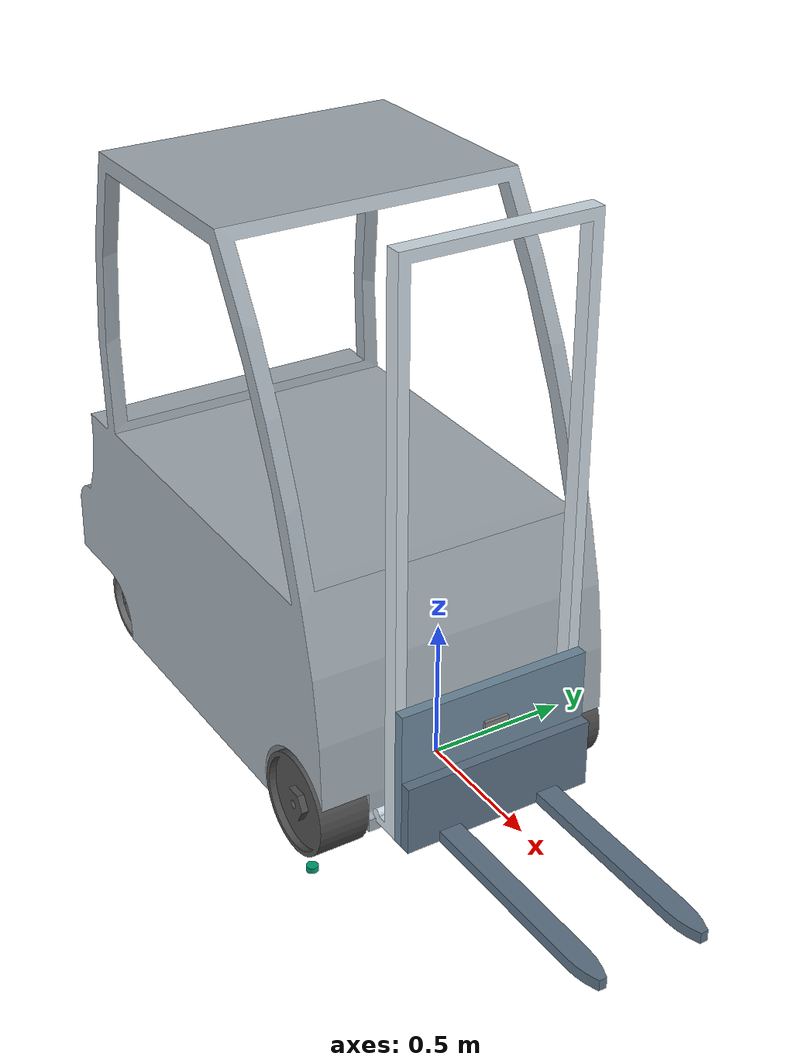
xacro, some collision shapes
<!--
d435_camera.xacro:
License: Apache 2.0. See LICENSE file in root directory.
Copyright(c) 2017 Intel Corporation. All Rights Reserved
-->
<?xml version="1.0" ?>
<robot name="RX20_16" xmlns:xacro="http://www.ros.org/wiki/xacro" >

<xacro:include filename="$(find forklift_simulator)/urdf/RX20_16/inertia.xacro" />
<xacro:include filename="$(find forklift_simulator)/urdf/RX20_16/base.xacro" />
<xacro:include filename="$(find forklift_simulator)/urdf/RX20_16/nav_lidar.xacro" />
<xacro:include filename="$(find forklift_simulator)/urdf/RX20_16/detection_lidar.xacro" />
<xacro:include filename="$(find forklift_simulator)/urdf/RX20_16/steer_wheels.xacro" />
<xacro:include filename="$(find forklift_simulator)/urdf/RX20_16/front_wheels.xacro" />
<xacro:include filename="$(find forklift_simulator)/urdf/RX20_16/d435_camera.xacro" />
<xacro:include filename="$(find forklift_simulator)/urdf/RX20_16/loading_forklift_joints.xacro" />
<xacro:include filename="$(find forklift_simulator)/urdf/RX20_16/lib_ackermansteer.xacro" />

<xacro:camera_d435 name="camera" topics_ns="camera" parent="lift_link" publish_pointcloud="true"> <origin xyz="0.02 0 0.1" rpy="0 0 0" /> </xacro:camera_d435>

<xacro:rx20_steer_wheel name="left" x_steering="-1.429" y_steering="0.404" z_steering="0.06" radius="0.150" width="0.15" flip="-1" />
<xacro:rx20_steer_wheel name="right" x_steering="-1.429" y_steering="-0.404" z_steering="0.06" radius="0.150" width="0.15" flip="-1" />

<xacro:rx20_front_wheel name="right" x_loading="0.0" y_loading="0.466" z_loading="0.0" radius="0.18" width="0.18" flip="-1" />
<xacro:rx20_front_wheel name="left" x_loading="0.0" y_loading="-0.466" z_loading="0.0" radius="0.18" width="0.18" flip="-1" />

<xacro:nav_lidar name="back"  x="0.2"  y="-0.6" z="-0.1" roll="0" pitch="0" yaw="1.57" resolution="1"/>

</robot>

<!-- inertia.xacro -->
<robot xmlns:xacro="http://www.ros.org/wiki/xacro">

    <xacro:macro  name="cylinder_inertia" params="mass r l">
      <inertia  ixx="${mass*(3*r*r+l*l)/12}" ixy = "0" ixz = "0"
                iyy="${mass*(3*r*r+l*l)/12}" iyz = "0"
                izz="${mass*(r*r)/2}" />
    </xacro:macro >

    <xacro:macro name="box_inertia" params="mass x y z">
      <inertia  ixx="${mass*(y*y+z*z)/12}" ixy = "0" ixz = "0"
                iyy="${mass*(x*x+z*z)/12}" iyz = "0"
                izz="${mass*(x*x+y*y)/12}"/>
    </xacro:macro>

    <xacro:macro name="sphere_inertia" params="mass r">
      <inertia
          ixx="${2*mass*r*r/5}" ixy = "0" ixz = "0"
          iyy="${2*mass*r*r/5}" iyz = "0"
          izz="${2*mass*r*r/5}"/>
    </xacro:macro>

</robot>

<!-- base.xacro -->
<robot name="RX20_16" xmlns:xacro="http://www.ros.org/wiki/xacro">

  <link name="base_footprint"/>
  <link name="base_scan"/>

  <link name="base_link">
   <inertial>
    <origin xyz="-0.8 0 0.417" rpy="0 0 0"/>
     <xacro:box_inertia mass="10" x="1.843" y="1.1" z="0.835"/>
    <mass value= "10"/>
    </inertial>

    <collision>
      <origin rpy="0 0 0" xyz="0 0 0"/>
      <geometry>
        <mesh
          filename="$(find forklift_simulator)/urdf/RX20_16/meshes/body.dae" />
      </geometry>
    </collision>
    <visual>
      <origin rpy="0 0 0" xyz="0 0 0"/>
      <geometry>
        <mesh
        filename="$(find forklift_simulator)/urdf/RX20_16/meshes/body.dae" />
      </geometry>
    </visual>
  </link>

  <joint name="imu_joint" type="fixed">
    <parent link="base_link"/>
    <child link="imu_link"/>
    <origin xyz="0.0 0 0.068" rpy="0 0 0"/>
  </joint>

  <link name="imu_link"/>

  <joint name="base_joint" type="fixed">
    <parent link="base_footprint" />
    <child link="base_link" />
    <origin xyz="0.0 0 0.0" rpy="0 0 0" />
    <axis xyz="0 0 1" />
  </joint>

  <joint name="scan_joint" type="fixed">
    <parent link="base_footprint" />
    <child link="base_scan" />
    <origin xyz="0.0 0 0.0" rpy="0 0 0" />
    <axis xyz="0 0 1" />
  </joint>

</robot>

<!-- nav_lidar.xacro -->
<robot name="RX20_16" xmlns:xacro="http://www.ros.org/wiki/xacro">

<xacro:macro name="nav_lidar" params="name x y z roll pitch yaw resolution">

  <link name="${name}_nav_lidar">
      <inertial>
      <origin xyz="0 0 0" rpy="0 0 0"/>
      <xacro:cylinder_inertia mass="0.01" r="0.02" l="0.02" />
      <mass value= "0.01"/>
      </inertial>

      <collision>
      <origin xyz="0 0 0" rpy="0 0 0"/>
      <geometry>
            <cylinder radius="0.02" length="0.02"/>
      </geometry>
      </collision>

      <visual>
      <origin xyz="0 0 0" rpy="0 0 0"/>
      <geometry>
      <cylinder radius="0.02" length="0.02"/>
      </geometry>
      </visual>
  </link>

  <gazebo reference="${name}_nav_lidar"  >
      <sensor name="/scan_${name}_nav_lidar_sensor" type="ray">
        <pose>0 0 0 0 0   0</pose>
        <visualize>false</visualize>
        <update_rate>20</update_rate>
          <ray>
          <scan>
            <horizontal>
              <samples>1440</samples>
                <resolution>1</resolution>
              <min_angle>0</min_angle>
                <max_angle>6.28</max_angle>
            </horizontal>
          </scan>
            <range>
            <min>0.10</min>
            <max>10.0</max>
              <resolution>0.01</resolution>
          </range>
          <noise>
              <type>gaussian</type>
            <mean>0.0</mean>
            <stddev>0.001</stddev>
            </noise>
        </ray>
        <plugin filename="libgazebo_ros_laser.so"   name="gazebo_ros_head_hokuyo_controller">
          <topicName>/scan</topicName>
            <frameName>${name}_nav_lidar</frameName>
        </plugin>
      </sensor>
    </gazebo>

  <joint name="lidar_joint_${name}" type="fixed">

    <parent link="base_scan" />
    <child link="${name}_nav_lidar" />
    <origin xyz="${x} ${y} ${z}" rpy="${roll} ${pitch} ${yaw}" />
    <axis xyz="0 0 1" />
  </joint>

 </xacro:macro>

</robot>

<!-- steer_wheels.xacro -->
<robot name="RX20_16" xmlns:xacro="http://www.ros.org/wiki/xacro">

<xacro:macro name="rx20_steer_wheel" params="name x_steering y_steering z_steering radius width flip">

  <link name="wheel_${name}_steering_link">
    <inertial>
    <origin xyz="0 0 0.1125" rpy="0 0 0"/>
    <xacro:cylinder_inertia mass="1" r="0.05" l="0.225" />
    <mass value= "1"/>
    </inertial>

    <collision >
    <origin xyz="0 0 0" rpy="0 0 0"/>
    <geometry>
        <mesh filename="$(find forklift_simulator)/urdf/RX20_16/meshes/steering_rod.dae" />
    </geometry>
    </collision>

    <visual >
    <origin xyz="0 0 0" rpy="0 0 0"/>
    <geometry>
        <mesh filename="$(find forklift_simulator)/urdf/RX20_16/meshes/steering_rod.dae" />
    </geometry>
    </visual>
  </link>

  <joint name="wheel_${name}_steering_joint" type="revolute">
    <parent link="base_link" />
    <child link="wheel_${name}_steering_link" />
    <origin xyz="${x_steering} ${y_steering} ${z_steering }" rpy="0 0 1.57" />
    <axis xyz="0 0 ${1*flip}" />
    <limit lower="-1.0" upper="1.0" effort="30" velocity="0.3"/>
     <dynamics damping="1" friction="1"/>
  </joint>

  <link name="wheel_${name}_link">
    <inertial>
    <origin xyz="0 0 0" rpy="0 0 0"/>
    <xacro:cylinder_inertia mass="0.5" r="${radius}" l="${width}" />
    <mass value= "0.5"/>
    </inertial>

    <collision >
      <origin xyz="0 0 0" rpy="0 0 0"/>
      <geometry>
           <cylinder radius="${radius}" length="${width}"/>
      </geometry>
    </collision>

    <visual>
    <origin xyz="0 0 0" rpy="0 0 0"/>
    <geometry>
        <mesh filename="$(find forklift_simulator)/urdf/RX20_16/meshes/rear_wheel.dae" />
    </geometry>
    </visual>
  </link>

  <joint name="wheel_${name}_joint" type="continuous">
    <parent link="wheel_${name}_steering_link" />
    <child link="wheel_${name}_link" />
    <origin xyz=" 0 0 -0.09" rpy="0 1.57 0" />
    <axis xyz="0 0 1" />
        <limit effort="100" velocity="100"/>
     <dynamics damping="0.01" friction="0.0"/>
  </joint>

  <transmission name="trans_steering_${name}">
    <type>transmission_interface/SimpleTransmission</type>
    <joint name="wheel_${name}_steering_joint">
      <hardwareInterface>hardware_interface/EffortJointInterface</hardwareInterface>
    </joint>
    <actuator name="motor_steering_wheel_${name}">
      <hardwareInterface>hardware_interface/EffortJointInterface</hardwareInterface>
      <mechanicalReduction>1</mechanicalReduction>
    </actuator>
  </transmission>

  <gazebo reference="wheel_${name}_link">
			<mu1>1</mu1>
			<mu2>1</mu2>
			<kp>1000000000.0</kp>
			<kd>1000.0</kd>
			<minDepth>0.002</minDepth>
			<maxVel>0</maxVel>
		</gazebo>

 </xacro:macro>

</robot>

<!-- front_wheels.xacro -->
<robot name="RX20_16" xmlns:xacro="http://www.ros.org/wiki/xacro">

<xacro:macro name="rx20_front_wheel" params="name x_loading y_loading z_loading radius width flip">

  <link name="wheel_${name}_driving_link">
    <inertial>
    <origin xyz="0 0 0" rpy="0 0 0"/>
    <xacro:cylinder_inertia mass="1" r="${radius}" l="${width}" />
    <mass value= "1"/>
    </inertial>

    <collision >
      <origin xyz="0 0 0" rpy="0 0 0"/>
      <geometry>
           <cylinder radius="${radius}" length="${width}"/>
      </geometry>
    </collision>

    <visual>
    <origin xyz="0 0 0" rpy="0 0 0"/>
    <geometry>
        <mesh filename="$(find forklift_simulator)/urdf/RX20_16/meshes/front_wheel.dae" />
    </geometry>
    </visual>
  </link>

  <joint name="wheel_${name}_driving_joint" type="continuous">
    <parent link="base_link" />
    <child link="wheel_${name}_driving_link" />
    <origin xyz="${x_loading} ${y_loading} ${z_loading}" rpy="1.57 0 0" />
    <axis xyz="0 0 ${1*flip}" />
    <limit effort="100" velocity="100"/>
     <dynamics damping="0.01" friction="1.0"/>
  </joint>

   <transmission name="trans_dynamic_${name}">
    <type>transmission_interface/SimpleTransmission</type>
    <joint name="wheel_${name}_driving_joint">
      <hardwareInterface>hardware_interface/EffortJointInterface</hardwareInterface>
    </joint>
    <actuator name="motor_dynamic_wheel_${name}">
      <hardwareInterface>hardware_interface/EffortJointInterface</hardwareInterface>
      <mechanicalReduction>1</mechanicalReduction>
    </actuator>
  </transmission>

  <gazebo reference="wheel_${name}_driving_link">
			<mu1>1.0</mu1>
			<mu2>1.0</mu2>
			<kp>1000000000.0</kp>
			<kd>1000.0</kd>
			<minDepth>0.002</minDepth>
			<maxVel>0</maxVel>
		</gazebo>

 </xacro:macro>

</robot>

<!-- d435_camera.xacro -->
<robot name="camera_d435" xmlns:xacro="http://ros.org/wiki/xacro">
  <!--File includes-->
  <xacro:include filename="$(find forklift_simulator)/urdf/RX20_16/d435_sensor.xacro"/>

  <xacro:macro name="camera_d435" params="name:=camera topics_ns:=camera parent *origin publish_pointcloud:=true">
    <xacro:property name="M_PI" value="3.1415926535897931" />

    <!-- The following values are approximate, and the camera node
     publishing TF values with actual calibrated camera extrinsic values -->
    <xacro:property name="d435_cam_depth_to_left_ir_offset" value="0.0"/>
    <xacro:property name="d435_cam_depth_to_right_ir_offset" value="-0.050"/>
    <xacro:property name="d435_cam_depth_to_color_offset" value="0.015"/>

    <!-- The following values model the aluminum peripherial case for the
    D435 camera, with the camera joint represented by the actual
    peripherial camera tripod mount -->
    <xacro:property name="d435_cam_width" value="0.090"/>
    <xacro:property name="d435_cam_height" value="0.025"/>
    <xacro:property name="d435_cam_depth" value="0.02505"/>
    <xacro:property name="d435_cam_mount_from_center_offset" value="0.0149"/>

    <!-- The following offset is relative the the physical D435 camera peripherial
    camera tripod mount -->
    <xacro:property name="d435_cam_depth_px" value="${d435_cam_mount_from_center_offset}"/>
    <xacro:property name="d435_cam_depth_py" value="0.0175"/>
    <xacro:property name="d435_cam_depth_pz" value="${d435_cam_height/2}"/>

    <material name="${name}_aluminum">
    <color rgba="0.5 0.5 0.5 1"/>
    </material>

    <!-- camera body, with origin at bottom screw mount -->
    <joint name="${name}_joint" type="fixed">
      <xacro:insert_block name="origin" />
      <parent link="${parent}"/>
      <child link="${name}_bottom_screw_frame" />
    </joint>
    <link name="${name}_bottom_screw_frame"/>

    <joint name="${name}_link_joint" type="fixed">
      <origin xyz="0 ${d435_cam_depth_py} ${d435_cam_depth_pz}" rpy="0 0 0"/>
      <parent link="${name}_bottom_screw_frame"/>
      <child link="${name}_link" />
    </joint>

    <link name="${name}_link">
      <visual>
      <origin xyz="${d435_cam_mount_from_center_offset} ${-d435_cam_depth_py} 0" rpy="${M_PI/2} 0 ${M_PI/2}"/>
        <geometry>
          <mesh filename="package://forklift_simulator/urdf/RX20_16/meshes/d435.dae" />
        </geometry>
        <material name="${name}_aluminum"/>
      </visual>
      <collision>
        <origin xyz="0 ${-d435_cam_depth_py} 0" rpy="0 0 0"/>
        <geometry>
        <box size="${d435_cam_depth} ${d435_cam_width} ${d435_cam_height}"/>
        </geometry>
      </collision>
      <inertial>
        <!-- The following are not reliable values, and should not be used for modeling -->
        <mass value="0.564" />
        <origin xyz="0 0 0" />
        <inertia ixx="0.003881243" ixy="0.0" ixz="0.0" iyy="0.000498940" iyz="0.0" izz="0.003879257" />
      </inertial>
    </link>

    <!-- camera depth joints and links -->
    <joint name="${name}_depth_joint" type="fixed">
      <origin xyz="0 0 0" rpy="0 0 0"/>
      <parent link="${name}_link"/>
      <child link="${name}_depth_frame" />
    </joint>
    <link name="${name}_depth_frame"/>

    <joint name="${name}_depth_optical_joint" type="fixed">
      <origin xyz="0 0 0" rpy="${-M_PI/2} 0 ${-M_PI/2}" />
      <parent link="${name}_depth_frame" />
      <child link="${name}_depth_optical_frame" />
    </joint>
    <link name="${name}_depth_optical_frame"/>

    <!-- camera left IR joints and links -->
    <joint name="${name}_left_ir_joint" type="fixed">
      <origin xyz="0 ${d435_cam_depth_to_left_ir_offset} 0" rpy="0 0 0" />
      <parent link="${name}_depth_frame" />
      <child link="${name}_left_ir_frame" />
    </joint>
    <link name="${name}_left_ir_frame"/>

    <joint name="${name}_left_ir_optical_joint" type="fixed">
      <origin xyz="0 0 0" rpy="${-M_PI/2} 0 ${-M_PI/2}" />
      <parent link="${name}_left_ir_frame" />
      <child link="${name}_left_ir_optical_frame" />
    </joint>
    <link name="${name}_left_ir_optical_frame"/>

    <!-- camera right IR joints and links -->
    <joint name="${name}_right_ir_joint" type="fixed">
      <origin xyz="0 ${d435_cam_depth_to_right_ir_offset} 0" rpy="0 0 0" />
      <parent link="${name}_depth_frame" />
      <child link="${name}_right_ir_frame" />
    </joint>
    <link name="${name}_right_ir_frame"/>

    <joint name="${name}_right_ir_optical_joint" type="fixed">
      <origin xyz="0 0 0" rpy="${-M_PI/2} 0 ${-M_PI/2}" />
      <parent link="${name}_right_ir_frame" />
      <child link="${name}_right_ir_optical_frame" />
    </joint>
    <link name="${name}_right_ir_optical_frame"/>

    <!-- camera color joints and links -->
    <joint name="${name}_color_joint" type="fixed">
      <origin xyz="0 ${d435_cam_depth_to_color_offset} 0" rpy="0 0 0" />
      <parent link="${name}_depth_frame" />
      <child link="${name}_color_frame" />
    </joint>
    <link name="${name}_color_frame"/>

    <joint name="${name}_color_optical_joint" type="fixed">
      <origin xyz="0 0 0" rpy="${-M_PI/2} 0 ${-M_PI/2}" />
      <parent link="${name}_color_frame" />
      <child link="${name}_color_optical_frame" />
    </joint>
    <link name="${name}_color_optical_frame"/>

    <!-- Realsense Gazebo Plugin -->
    <xacro:gazebo_d435 camera_name="${name}" reference_link="${name}_link" topics_ns="${topics_ns}" depth_optical_frame="${name}_depth_optical_frame" color_optical_frame="${name}_color_optical_frame" infrared1_optical_frame="${name}_left_ir_optical_frame" infrared2_optical_frame="${name}_right_ir_optical_frame" publish_pointcloud="${publish_pointcloud}"/>

  </xacro:macro>
</robot>

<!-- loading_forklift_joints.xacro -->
<robot name="RX20_16" xmlns:xacro="http://www.ros.org/wiki/xacro">

 <link name="tilt_link">
    <inertial>
    <origin xyz="0 0 0" rpy="0 0 0"/>
    <xacro:box_inertia mass="0.1" x="0.2" y="0.1" z="0.05"/>
    <mass value= "0.1"/>
    </inertial>

    <collision >
    <origin xyz="0 0 0" rpy="0 0 0"/>
    <geometry> <mesh filename="$(find forklift_simulator)/urdf/RX20_16/meshes/tilt_link.dae" />
    </geometry>
    </collision>

    <visual>
    <origin xyz="0 0 0" rpy="0 0 0"/>
    <geometry>
          <mesh filename="$(find forklift_simulator)/urdf/RX20_16/meshes/tilt_link.dae" />
    </geometry>
    </visual>
  </link>

  <joint name="tilt_joint" type="revolute">
    <parent link="base_link" />
    <child link="tilt_link" />
    <origin xyz="0.18 0 0.0" rpy="0 0 0" />
    <axis xyz="0 1 0" />
    <limit lower="-0.087" upper="0.105" effort="50" velocity="0.3"/>
     <dynamics damping="10" friction="1"/>
  </joint>

  <link name="lift_link">
    <inertial>
    <origin xyz="0 0 0" rpy="0 0 0"/>
    <xacro:box_inertia mass="0.1" x="0.2" y="0.1" z="0.05"/>
    <mass value= "0.1"/>
    </inertial>

    <collision >
    <origin xyz="0 0 0" rpy="0 0 0"/>
    <geometry> <mesh filename="$(find forklift_simulator)/urdf/RX20_16/meshes/lift_link.dae" />
    </geometry>
    </collision>

    <visual>
    <origin xyz="0 0 0" rpy="0 0 0"/>
    <geometry>
          <mesh filename="$(find forklift_simulator)/urdf/RX20_16/meshes/lift_link.dae" />
    </geometry>
    </visual>
  </link>

  <joint name="lift_joint" type="prismatic">
    <parent link="tilt_link" />
    <child link="lift_link" />
    <origin xyz="0.134 0 0.22" rpy="0 0 0" />
    <axis xyz="0 0 1" />
    <limit lower="-0.2" upper="2" effort="100" velocity="0.3"/>
     <dynamics damping="100.0" friction="1"/>
  </joint>

  <link name="sideshift_link">
    <inertial>
    <origin xyz="0 0 0" rpy="0 0 0"/>
    <xacro:box_inertia mass="0.1" x="0.2" y="0.1" z="0.05"/>
    <mass value= "0.1"/>
    </inertial>

    <collision >
    <origin xyz="0 0 0" rpy="0 0 0"/>
    <geometry> <mesh filename="$(find forklift_simulator)/urdf/RX20_16/meshes/sideshift_link.dae" />
    </geometry>
    </collision>

    <visual>
    <origin xyz="0 0 0" rpy="0 0 0"/>
    <geometry>
          <mesh filename="$(find forklift_simulator)/urdf/RX20_16/meshes/sideshift_link.dae" />
    </geometry>
    </visual>
  </link>

  <joint name="sideshift_joint" type="prismatic">
    <parent link="lift_link" />
    <child link="sideshift_link" />
    <origin xyz="0.06 0 -0.25" rpy="0 0 0" />
    <axis xyz="0 1 0" />
    <limit lower="-0.2" upper="0.2" effort="100" velocity="0.3"/>
     <dynamics damping="10" friction="1"/>
  </joint>

  <transmission name="tran1">
    <type>transmission_interface/SimpleTransmission</type>
    <joint name="tilt_joint">
      <hardwareInterface>hardware_interface/EffortJointInterface</hardwareInterface>
    </joint>
    <actuator name="motor1">
      <hardwareInterface>hardware_interface/EffortJointInterface</hardwareInterface>
      <mechanicalReduction>1</mechanicalReduction>
    </actuator>
  </transmission>

  <transmission name="tran2">
    <type>transmission_interface/SimpleTransmission</type>
    <joint name="lift_joint">
      <hardwareInterface>hardware_interface/EffortJointInterface</hardwareInterface>
    </joint>
    <actuator name="motor2">
      <hardwareInterface>hardware_interface/EffortJointInterface</hardwareInterface>
      <mechanicalReduction>1</mechanicalReduction>
    </actuator>
  </transmission>

  <transmission name="tran3">
    <type>transmission_interface/SimpleTransmission</type>
    <joint name="sideshift_joint">
      <hardwareInterface>hardware_interface/EffortJointInterface</hardwareInterface>
    </joint>
    <actuator name="motor3">
      <hardwareInterface>hardware_interface/EffortJointInterface</hardwareInterface>
      <mechanicalReduction>1</mechanicalReduction>
    </actuator>
  </transmission>

  <gazebo>
    <plugin name="gazebo_ros_control" filename="libgazebo_ros_control.so">
      <robotNamespace>/RX20_16</robotNamespace>
      <robotSimType>gazebo_ros_control/DefaultRobotHWSim</robotSimType>
    </plugin>
  </gazebo>

  <link name='box1'>
    <collision>
      <geometry>
        <box size="0.8 0.08 0.042"/>
      </geometry>
    </collision>
  </link>

  <joint name="pad_joint1" type="fixed">
    <parent link="sideshift_link" />
    <child link="box1" />
    <origin xyz="0.4 0.189 0.02" rpy="0 0 0" />
    <axis xyz="0 0 1" />
  </joint>

  <link name='box2'>
    <collision>
      <geometry>
        <box size="0.8 0.08 0.042"/>
      </geometry>
    </collision>
  </link>

  <joint name="pad_joint2" type="fixed">
    <parent link="sideshift_link" />
    <child link="box2" />
    <origin xyz="0.4 -0.189 0.02" rpy="0 0 0" />
    <axis xyz="0 0 1" />
  </joint>

  <link name='box'>
    <collision>
      <geometry>
        <box size="0.02 0.2 0.1"/>
      </geometry>
    </collision>
  </link>

  <joint name="pad_joint" type="fixed">
    <parent link="sideshift_link" />
    <child link="box" />
    <origin xyz="0.0 0.0 0.05" rpy="0 0 0" />
    <axis xyz="0 0 1" />
  </joint>

  </robot>
